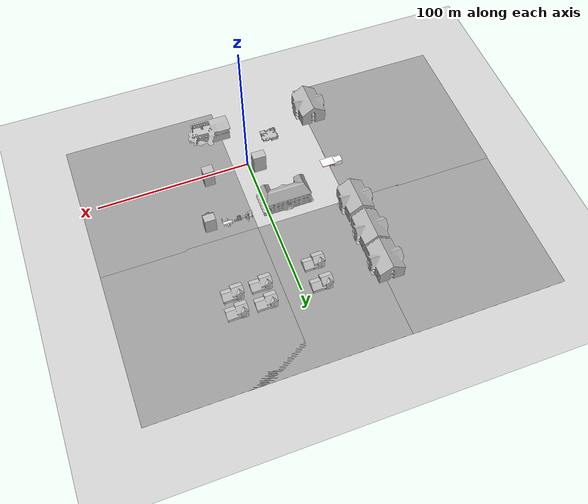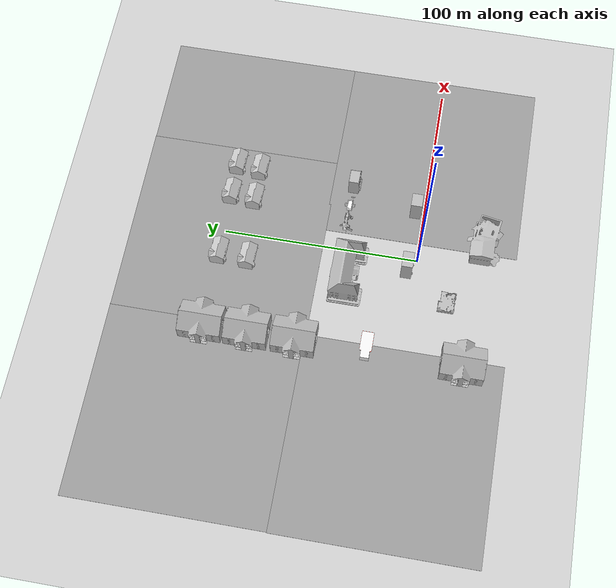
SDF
<sdf version="1.6">
 <world name="default">
  <light name="sun" type="directional">
   <pose>0 0 10 0 -0 0</pose>
   <diffuse>0.8 0.8 0.8 1</diffuse>
   <specular>0.1 0.1 0.1 1</specular>
   <attenuation>
    <range>1000</range>
    <constant>0.9</constant>
    <linear>0.01</linear>
    <quadratic>0.001</quadratic>
   </attenuation>
   <direction>-0.5 0.5 -1</direction>
  </light>
  <model name="ground_plane">
   <static>1</static>
   <link name="link">
    <collision name="collision">
     <geometry><plane><normal>0 0 1</normal><size>100 100</size></plane></geometry>
     <surface><friction><ode><mu>100</mu><mu2>50</mu2></ode></friction></surface>
    </collision>
    <visual name="visual">
     <cast_shadows>0</cast_shadows>
     <geometry><plane><normal>0 0 1</normal><size>100 100</size></plane></geometry>
     <material>
      <script><uri>file://media/materials/scripts/gazebo.material</uri><name>Gazebo/Grey</name></script>
     </material>
    </visual>
   </link>
  </model>
  <gravity>0 0 -9.8</gravity>
  <magnetic_field>6e-06 2.3e-05 -4.2e-05</magnetic_field>
  <atmosphere type="adiabatic"/>
  <physics name="default_physics" default="0" type="ode">
   <max_step_size>0.001</max_step_size>
   <real_time_factor>1</real_time_factor>
   <real_time_update_rate>1000</real_time_update_rate>
  </physics>
  <scene><ambient>0.4 0.4 0.4 1</ambient><background>0.7 0.7 0.7 1</background><shadows>1</shadows></scene>
  <spherical_coordinates>
   <surface_model>EARTH_WGS84</surface_model>
   <latitude_deg>0</latitude_deg>
   <longitude_deg>0</longitude_deg>
   <elevation>0</elevation>
   <heading_deg>0</heading_deg>
  </spherical_coordinates>
  <model name="collapsed_house">
   <static>1</static>
   <link name="link">
    <collision name="collision">
     <geometry>
      <mesh><scale>1 1 1</scale><uri>model://collapsed_house/meshes/collapsed_house.dae</uri></mesh>
     </geometry>
    </collision>
    <visual name="visual">
     <geometry>
      <mesh><scale>1 1 1</scale><uri>model://collapsed_house/meshes/collapsed_house.dae</uri></mesh>
     </geometry>
    </visual>
   </link>
   <pose>-20.6441 -17.5336 0 0 -0 0</pose>
  </model>
  <model name="collapsed_fire_station">
   <static>1</static>
   <link name="link">
    <collision name="collision">
     <geometry>
      <mesh><uri>model://collapsed_fire_station/meshes/collapsed_fire_station.dae</uri><scale>1 1 1</scale></mesh>
     </geometry>
    </collision>
    <visual name="visual">
     <geometry>
      <mesh><uri>model://collapsed_fire_station/meshes/collapsed_fire_station.dae</uri><scale>1 1 1</scale></mesh>
     </geometry>
    </visual>
   </link>
   <pose>17.3175 -32.6971 0 0 -0 0</pose>
  </model>
  <model name="ground_plane_0">
   <static>1</static>
   <link name="link">
    <collision name="collision">
     <geometry><plane><normal>0 0 1</normal><size>100 100</size></plane></geometry>
     <surface><friction><ode><mu>100</mu><mu2>50</mu2></ode></friction></surface>
    </collision>
    <visual name="visual">
     <cast_shadows>0</cast_shadows>
     <geometry><plane><normal>0 0 1</normal><size>100 100</size></plane></geometry>
     <material>
      <script><uri>file://media/materials/scripts/gazebo.material</uri><name>Gazebo/Grey</name></script>
     </material>
    </visual>
   </link>
   <pose>0.09158 99.1869 0 0 -0 0</pose>
  </model>
  <model name="obby13">
   <static>1</static>
   <link name="link">
    <collision name="collision">
     <geometry><mesh><uri>model://apartment/meshes/apartment.dae</uri><scale>1 1 1</scale></mesh></geometry>
    </collision>
    <visual name="visual">
     <geometry><mesh><uri>model://apartment/meshes/apartment.dae</uri><scale>1 1 1</scale></mesh></geometry>
    </visual>
   </link>
   <pose>-53 78.147 0 0 -0 0</pose>
  </model>
  <model name="obby14">
   <static>1</static>
   <link name="link">
    <collision name="collision">
     <geometry><mesh><uri>model://playground/meshes/playground.dae</uri><scale>1 1 1</scale></mesh></geometry>
    </collision>
    <visual name="visual">
     <geometry><mesh><uri>model://playground/meshes/playground.dae</uri><scale>1 1 1</scale></mesh></geometry>
    </visual>
   </link>
   <pose>16.2297 39.2375 0 0 -0 0</pose>
  </model>
  <model name="apartment_clone_0">
   <static>1</static>
   <link name="link">
    <collision name="collision">
     <geometry><mesh><uri>model://apartment/meshes/apartment.dae</uri><scale>1 1 1</scale></mesh></geometry>
    </collision>
    <visual name="visual">
     <geometry><mesh><uri>model://apartment/meshes/apartment.dae</uri><scale>1 1 1</scale></mesh></geometry>
    </visual>
   </link>
   <pose>-53 54.2629 0 0 -0 0</pose>
  </model>
  <model name="obby12">
   <static>1</static>
   <link name="link">
    <collision name="collision">
     <geometry><mesh><uri>model://fast_food/meshes/fast_food.dae</uri><scale>1 1 1</scale></mesh></geometry>
    </collision>
    <visual name="visual">
     <geometry><mesh><uri>model://fast_food/meshes/fast_food.dae</uri><scale>1 1 1</scale></mesh></geometry>
     <material>
      <script>
       <uri>model://fast_food/materials/scripts</uri>
       <uri>model://fast_food/materials/textures</uri>
       <name>FastFood/Diffuse</name>
      </script>
     </material>
    </visual>
   </link>
   <pose>26.2407 39.3885 0 0 -0 0</pose>
  </model>
  <model name="thrift_shop_clone_clone">
   <static>1</static>
   <link name="link">
    <collision name="collision">
     <pose>0 0 5.69469 0 -0 0</pose>
     <geometry><box><size>7.21297 5.43165 11.3894</size></box></geometry>
    </collision>
    <visual name="visual">
     <pose>0 -0.912491 0 0 -0 0</pose>
     <geometry><mesh><uri>model://thrift_shop/meshes/thrift_shop.dae</uri><scale>1 1 1</scale></mesh></geometry>
    </visual>
   </link>
   <pose>37.5008 38.8053 0 0 -0 0</pose>
  </model>
  <model name="apartment_clone_clone">
   <static>1</static>
   <link name="link">
    <collision name="collision">
     <geometry><mesh><uri>model://apartment/meshes/apartment.dae</uri><scale>1 1 1</scale></mesh></geometry>
    </collision>
    <visual name="visual">
     <geometry><mesh><uri>model://apartment/meshes/apartment.dae</uri><scale>1 1 1</scale></mesh></geometry>
    </visual>
   </link>
   <pose>-53 101.067 0 0 -0 0</pose>
  </model>
  <model name="apartment_clone_0_clone">
   <static>1</static>
   <link name="link">
    <collision name="collision">
     <geometry><mesh><uri>model://apartment/meshes/apartment.dae</uri><scale>1 1 1</scale></mesh></geometry>
    </collision>
    <visual name="visual">
     <geometry><mesh><uri>model://apartment/meshes/apartment.dae</uri><scale>1 1 1</scale></mesh></geometry>
    </visual>
   </link>
   <pose>-53 -29.2375 0 0 -0 0</pose>
  </model>
  <model name="ground_plane_1">
   <static>1</static>
   <link name="link">
    <collision name="collision">
     <geometry><plane><normal>0 0 1</normal><size>100 100</size></plane></geometry>
     <surface><friction><ode><mu>100</mu><mu2>50</mu2></ode></friction></surface>
    </collision>
    <visual name="visual">
     <cast_shadows>0</cast_shadows>
     <geometry><plane><normal>0 0 1</normal><size>100 100</size></plane></geometry>
     <material>
      <script><uri>file://media/materials/scripts/gazebo.material</uri><name>Gazebo/Grey</name></script>
     </material>
    </visual>
   </link>
   <pose>-99.3586 -0.130175 0 0 -0 0</pose>
  </model>
  <model name="ground_plane_2">
   <static>1</static>
   <link name="link">
    <collision name="collision">
     <geometry><plane><normal>0 0 1</normal><size>100 100</size></plane></geometry>
     <surface><friction><ode><mu>100</mu><mu2>50</mu2></ode></friction></surface>
    </collision>
    <visual name="visual">
     <cast_shadows>0</cast_shadows>
     <geometry><plane><normal>0 0 1</normal><size>100 100</size></plane></geometry>
     <material>
      <script><uri>file://media/materials/scripts/gazebo.material</uri><name>Gazebo/Grey</name></script>
     </material>
    </visual>
   </link>
   <pose>-99.071 99.3105 0 0 -0 0</pose>
  </model>
  <model name="ground_plane_3">
   <static>1</static>
   <link name="link">
    <collision name="collision">
     <geometry><plane><normal>0 0 1</normal><size>100 100</size></plane></geometry>
     <surface><friction><ode><mu>100</mu><mu2>50</mu2></ode></friction></surface>
    </collision>
    <visual name="visual">
     <cast_shadows>0</cast_shadows>
     <geometry><plane><normal>0 0 1</normal><size>100 100</size></plane></geometry>
     <material>
      <script><uri>file://media/materials/scripts/gazebo.material</uri><name>Gazebo/Grey</name></script>
     </material>
    </visual>
   </link>
   <pose>59.8485 0.086995 0 0 -0 0</pose>
  </model>
  <model name="ground_plane_5">
   <static>1</static>
   <link name="link">
    <collision name="collision">
     <geometry><plane><normal>0 0 1</normal><size>100 100</size></plane></geometry>
     <surface><friction><ode><mu>100</mu><mu2>50</mu2></ode></friction></surface>
    </collision>
    <visual name="visual">
     <cast_shadows>0</cast_shadows>
     <geometry><plane><normal>0 0 1</normal><size>100 100</size></plane></geometry>
     <material>
      <script><uri>file://media/materials/scripts/gazebo.material</uri><name>Gazebo/Grey</name></script>
     </material>
    </visual>
   </link>
   <pose>59.874 99.0162 0 0 -0 0</pose>
  </model>
  <model name="obby6">
   <link name="link">
    <visual name="visual">
     <geometry><mesh><uri>model://law_office/meshes/law_office.dae</uri><scale>1 1 1</scale></mesh></geometry>
    </visual>
    <collision name="collision">
     <pose>0 0 6.96244 0 -0 0</pose>
     <geometry><box><size>6.84401 5.43165 13.9249</size></box></geometry>
     <surface>
      <friction>
       <ode><mu>1</mu><mu2>1</mu2><fdir1>0 0 0</fdir1><slip1>0</slip1><slip2>0</slip2></ode>
       <torsional>
        <coefficient>1</coefficient>
        <patch_radius>0</patch_radius>
        <surface_radius>0</surface_radius>
        <use_patch_radius>1</use_patch_radius>
        <ode><slip>0</slip></ode>
       </torsional>
      </friction>
      <bounce><restitution_coefficient>0</restitution_coefficient><threshold>1e+06</threshold></bounce>
      <contact>
       <collide_without_contact>0</collide_without_contact>
       <collide_without_contact_bitmask>1</collide_without_contact_bitmask>
       <collide_bitmask>1</collide_bitmask>
       <ode>
        <soft_cfm>0</soft_cfm>
        <soft_erp>0.2</soft_erp>
        <kp>1e+13</kp>
        <kd>1</kd>
        <max_vel>0.01</max_vel>
        <min_depth>0</min_depth>
       </ode>
       <bullet>
        <split_impulse>1</split_impulse>
        <split_impulse_penetration_threshold>-0.01</split_impulse_penetration_threshold>
        <soft_cfm>0</soft_cfm>
        <soft_erp>0.2</soft_erp>
        <kp>1e+13</kp>
        <kd>1</kd>
       </bullet>
      </contact>
     </surface>
    </collision>
   </link>
   <static>1</static>
   <pose>28 5 0 0 -0 0</pose>
  </model>
  <model name="obby7">
   <link name="link">
    <inertial>
     <mass>1</mass>
     <inertia><ixx>1</ixx><ixy>0</ixy><ixz>0</ixz><iyy>1</iyy><iyz>0</iyz><izz>1</izz></inertia>
    </inertial>
    <visual name="visual">
     <geometry><mesh><uri>model://law_office/meshes/law_office.dae</uri><scale>1.2 1 1</scale></mesh></geometry>
     <material><shader type="vertex"><normal_map>__default__</normal_map></shader></material>
    </visual>
    <collision name="collision">
     <pose>0 0 6.96244 0 -0 0</pose>
     <geometry><box><size>7.6401 5.43165 13.9249</size></box></geometry>
     <surface>
      <friction>
       <ode><mu>1</mu><mu2>1</mu2><fdir1>0 0 0</fdir1><slip1>0</slip1><slip2>0</slip2></ode>
       <torsional>
        <coefficient>1</coefficient>
        <patch_radius>0</patch_radius>
        <surface_radius>0</surface_radius>
        <use_patch_radius>1</use_patch_radius>
        <ode><slip>0</slip></ode>
       </torsional>
      </friction>
      <bounce><restitution_coefficient>0</restitution_coefficient><threshold>1e+06</threshold></bounce>
      <contact>
       <collide_without_contact>0</collide_without_contact>
       <collide_without_contact_bitmask>1</collide_without_contact_bitmask>
       <collide_bitmask>1</collide_bitmask>
       <ode>
        <soft_cfm>0</soft_cfm>
        <soft_erp>0.2</soft_erp>
        <kp>1e+13</kp>
        <kd>1</kd>
        <max_vel>0.01</max_vel>
        <min_depth>0</min_depth>
       </ode>
       <bullet>
        <split_impulse>1</split_impulse>
        <split_impulse_penetration_threshold>-0.01</split_impulse_penetration_threshold>
        <soft_cfm>0</soft_cfm>
        <soft_erp>0.2</soft_erp>
        <kp>1e+13</kp>
        <kd>1</kd>
       </bullet>
      </contact>
     </surface>
    </collision>
   </link>
   <static>1</static>
   <pose>-6 5 0 0 -0 0</pose>
  </model>
  <model name="school">
   <static>1</static>
   <link name="link">
    <collision name="collision">
     <geometry><mesh><uri>model://school/meshes/school.dae</uri></mesh></geometry>
    </collision>
    <visual name="visual"><geometry><mesh><uri>model://school/meshes/school.dae</uri></mesh></geometry></visual>
   </link>
   <pose>-13.2826 36.6301 0 0 -0 0</pose>
  </model>
  <model name="obby8">
   <static>1</static>
   <link name="link">
    <collision name="collision">
     <geometry><mesh><uri>model://gas_station/meshes/gas_station.dae</uri></mesh></geometry>
    </collision>
    <visual name="visual">
     <geometry><mesh><uri>model://gas_station/meshes/gas_station.dae</uri></mesh></geometry>
     <material>
      <script>
       <uri>model://gas_station/materials/scripts</uri>
       <uri>model://gas_station/materials/textures</uri>
       <name>GasStation/Diffuse</name>
      </script>
      <shader type="normal_map_tangent_space"><normal_map>GasStation_Normal.png</normal_map></shader>
     </material>
    </visual>
   </link>
   <pose>-51.3986 18.6852 0 0 -0 0</pose>
  </model>
  <model name="House 3">
   <static>1</static>
   <link name="link">
    <collision name="collision">
     <geometry><mesh><uri>model://house_3/meshes/house_3.dae</uri><scale>1.5 1.5 1.5</scale></mesh></geometry>
    </collision>
    <visual name="visual">
     <geometry><mesh><uri>model://house_3/meshes/house_3.dae</uri><scale>1.5 1.5 1.5</scale></mesh></geometry>
     <material>
      <script>
       <uri>model://house_3/materials/scripts</uri>
       <uri>model://house_3/materials/textures</uri>
       <uri>model://house_1/materials/textures</uri>
       <name>House_3/Diffuse</name>
      </script>
      <shader type="normal_map_tangent_space">
       <normal_map>model://house_1/materials/textures/House_1_Normal.png</normal_map>
      </shader>
     </material>
    </visual>
   </link>
   <pose>-12.1259 85.9595 0 0 -0 0</pose>
  </model>
  <model name="House 3_0">
   <static>1</static>
   <link name="link">
    <collision name="collision">
     <geometry><mesh><uri>model://house_3/meshes/house_3.dae</uri><scale>1.5 1.5 1.5</scale></mesh></geometry>
    </collision>
    <visual name="visual">
     <geometry><mesh><uri>model://house_3/meshes/house_3.dae</uri><scale>1.5 1.5 1.5</scale></mesh></geometry>
     <material>
      <script>
       <uri>model://house_3/materials/scripts</uri>
       <uri>model://house_3/materials/textures</uri>
       <uri>model://house_1/materials/textures</uri>
       <name>House_3/Diffuse</name>
      </script>
      <shader type="normal_map_tangent_space">
       <normal_map>model://house_1/materials/textures/House_1_Normal.png</normal_map>
      </shader>
     </material>
    </visual>
   </link>
   <pose>-11.6312 101.055 0 0 -0 0</pose>
  </model>
  <model name="House 3_1">
   <static>1</static>
   <link name="link">
    <collision name="collision">
     <geometry><mesh><uri>model://house_3/meshes/house_3.dae</uri><scale>1.5 1.5 1.5</scale></mesh></geometry>
    </collision>
    <visual name="visual">
     <geometry><mesh><uri>model://house_3/meshes/house_3.dae</uri><scale>1.5 1.5 1.5</scale></mesh></geometry>
     <material>
      <script>
       <uri>model://house_3/materials/scripts</uri>
       <uri>model://house_3/materials/textures</uri>
       <uri>model://house_1/materials/textures</uri>
       <name>House_3/Diffuse</name>
      </script>
      <shader type="normal_map_tangent_space">
       <normal_map>model://house_1/materials/textures/House_1_Normal.png</normal_map>
      </shader>
     </material>
    </visual>
   </link>
   <pose>22.3513 89.1509 0 0 -0 0</pose>
  </model>
  <model name="House 3_2">
   <static>1</static>
   <link name="link">
    <collision name="collision">
     <geometry><mesh><uri>model://house_3/meshes/house_3.dae</uri><scale>1.5 1.5 1.5</scale></mesh></geometry>
    </collision>
    <visual name="visual">
     <geometry><mesh><uri>model://house_3/meshes/house_3.dae</uri><scale>1.5 1.5 1.5</scale></mesh></geometry>
     <material>
      <script>
       <uri>model://house_3/materials/scripts</uri>
       <uri>model://house_3/materials/textures</uri>
       <uri>model://house_1/materials/textures</uri>
       <name>House_3/Diffuse</name>
      </script>
      <shader type="normal_map_tangent_space">
       <normal_map>model://house_1/materials/textures/House_1_Normal.png</normal_map>
      </shader>
     </material>
    </visual>
   </link>
   <pose>23.2347 101.547 0 0 -0 0</pose>
  </model>
  <model name="House 3_3">
   <static>1</static>
   <link name="link">
    <collision name="collision">
     <geometry><mesh><uri>model://house_3/meshes/house_3.dae</uri><scale>1.5 1.5 1.5</scale></mesh></geometry>
    </collision>
    <visual name="visual">
     <geometry><mesh><uri>model://house_3/meshes/house_3.dae</uri><scale>1.5 1.5 1.5</scale></mesh></geometry>
     <material>
      <script>
       <uri>model://house_3/materials/scripts</uri>
       <uri>model://house_3/materials/textures</uri>
       <uri>model://house_1/materials/textures</uri>
       <name>House_3/Diffuse</name>
      </script>
      <shader type="normal_map_tangent_space">
       <normal_map>model://house_1/materials/textures/House_1_Normal.png</normal_map>
      </shader>
     </material>
    </visual>
   </link>
   <pose>39.9971 89.5617 0 0 -0 0</pose>
  </model>
  <model name="House 3_4">
   <static>1</static>
   <link name="link">
    <collision name="collision">
     <geometry><mesh><uri>model://house_3/meshes/house_3.dae</uri><scale>1.5 1.5 1.5</scale></mesh></geometry>
    </collision>
    <visual name="visual">
     <geometry><mesh><uri>model://house_3/meshes/house_3.dae</uri><scale>1.5 1.5 1.5</scale></mesh></geometry>
     <material>
      <script>
       <uri>model://house_3/materials/scripts</uri>
       <uri>model://house_3/materials/textures</uri>
       <uri>model://house_1/materials/textures</uri>
       <name>House_3/Diffuse</name>
      </script>
      <shader type="normal_map_tangent_space">
       <normal_map>model://house_1/materials/textures/House_1_Normal.png</normal_map>
      </shader>
     </material>
    </visual>
   </link>
   <pose>41.1834 101.645 0 0 -0 0</pose>
  </model>
 </world>
</sdf>
